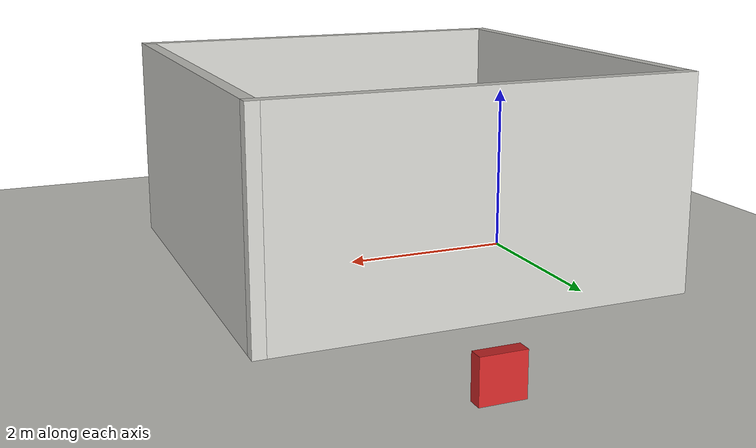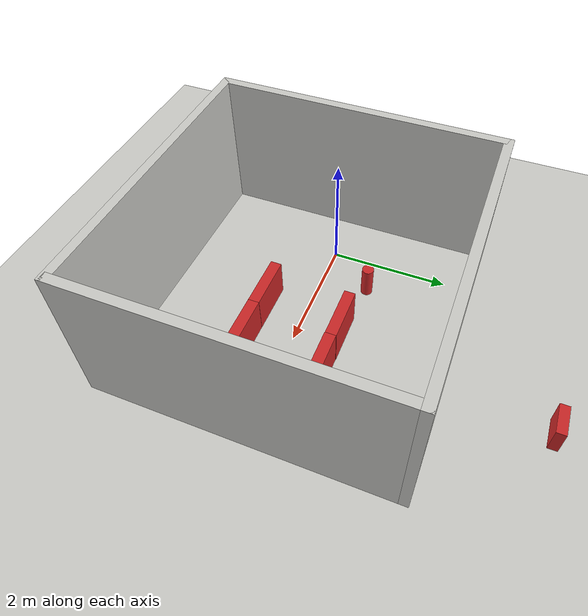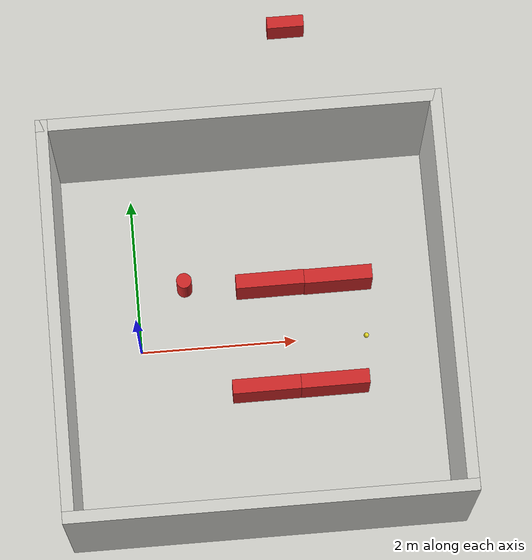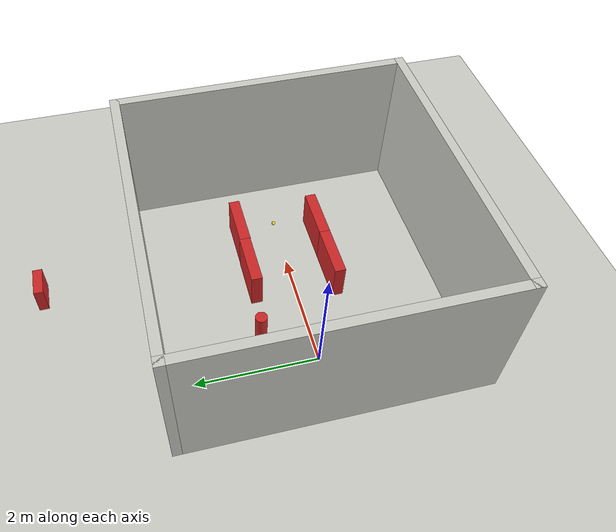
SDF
<sdf version="1.7">
 <world name="default">
  <light name="sun" type="directional">
   <pose>0 0 10 0 -0 0</pose>
   <diffuse>0.8 0.8 0.8 1</diffuse>
   <specular>0.2 0.2 0.2 1</specular>
   <attenuation>
    <range>1000</range>
    <constant>0.9</constant>
    <linear>0.01</linear>
    <quadratic>0.001</quadratic>
   </attenuation>
   <direction>-0.5 0.1 -0.9</direction>
   <spot><inner_angle>0</inner_angle><outer_angle>0</outer_angle><falloff>0</falloff></spot>
  </light>
  <model name="ground_plane">
   <pose>1.45388 -0.007926 0 0 -0 0</pose>
   <static>1</static>
   <link name="link">
    <collision name="collision">
     <geometry><plane><normal>0 0 1</normal><size>5 5</size></plane></geometry>
     <surface>
      <contact><collide_bitmask>65535</collide_bitmask></contact>
      <friction><ode><mu>100</mu><mu2>50</mu2></ode></friction>
     </surface>
    </collision>
    <visual name="visual">
     <cast_shadows>0</cast_shadows>
     <geometry><plane><normal>0 0 1</normal><size>5 5</size></plane></geometry>
     <material>
      <script><uri>file://media/materials/scripts/gazebo.material</uri><name>Gazebo/CeilingTiled</name></script>
      <ambient>1 1 1 1</ambient>
     </material>
    </visual>
   </link>
  </model>
  <gravity>0 0 -9.8</gravity>
  <magnetic_field>6e-06 2.3e-05 -4.2e-05</magnetic_field>
  <atmosphere type="adiabatic"/>
  <physics type="ode">
   <max_step_size>0.001</max_step_size>
   <real_time_factor>1</real_time_factor>
   <real_time_update_rate>1000</real_time_update_rate>
  </physics>
  <scene><ambient>0.4 0.4 0.4 1</ambient><background>0.7 0.7 0.7 1</background><shadows>1</shadows></scene>
  <audio><device>default</device></audio>
  <spherical_coordinates>
   <surface_model>EARTH_WGS84</surface_model>
   <latitude_deg>0</latitude_deg>
   <longitude_deg>0</longitude_deg>
   <elevation>0</elevation>
   <heading_deg>0</heading_deg>
  </spherical_coordinates>
  <model name="room_5">
   <pose>1.45775 -0.00463 0 0 -0 0</pose>
   <link name="Wall_17">
    <collision name="Wall_17_Collision">
     <geometry><box><size>5 0.15 2.5</size></box></geometry>
     <pose>0 0 1.25 0 -0 0</pose>
    </collision>
    <visual name="Wall_17_Visual">
     <pose>0 0 1.25 0 -0 0</pose>
     <geometry><box><size>5 0.15 2.5</size></box></geometry>
     <material>
      <script><uri>file://media/materials/scripts/gazebo.material</uri><name>Gazebo/CeilingTiled</name></script>
      <ambient>0.760784 0.662745 0.627451 1</ambient>
     </material>
     <meta><layer>0</layer></meta>
    </visual>
    <pose>-0 -2.425 0 0 -0 0</pose>
   </link>
   <link name="Wall_18">
    <collision name="Wall_18_Collision">
     <geometry><box><size>5 0.15 2.5</size></box></geometry>
     <pose>0 0 1.25 0 -0 0</pose>
    </collision>
    <visual name="Wall_18_Visual">
     <pose>0 0 1.25 0 -0 0</pose>
     <geometry><box><size>5 0.15 2.5</size></box></geometry>
     <material>
      <script><uri>file://media/materials/scripts/gazebo.material</uri><name>Gazebo/CeilingTiled</name></script>
      <ambient>0.760784 0.662745 0.627451 1</ambient>
     </material>
     <meta><layer>0</layer></meta>
    </visual>
    <pose>2.425 -0 0 0 -0 1.5708</pose>
   </link>
   <link name="Wall_19">
    <collision name="Wall_19_Collision">
     <geometry><box><size>5 0.15 2.5</size></box></geometry>
     <pose>0 0 1.25 0 -0 0</pose>
    </collision>
    <visual name="Wall_19_Visual">
     <pose>0 0 1.25 0 -0 0</pose>
     <geometry><box><size>5 0.15 2.5</size></box></geometry>
     <material>
      <script><uri>file://media/materials/scripts/gazebo.material</uri><name>Gazebo/CeilingTiled</name></script>
      <ambient>0.760784 0.662745 0.627451 1</ambient>
     </material>
     <meta><layer>0</layer></meta>
    </visual>
    <pose>-0 2.425 0 0 -0 3.14159</pose>
   </link>
   <link name="Wall_20">
    <collision name="Wall_20_Collision">
     <geometry><box><size>5 0.15 2.5</size></box></geometry>
     <pose>0 0 1.25 0 -0 0</pose>
    </collision>
    <visual name="Wall_20_Visual">
     <pose>0 0 1.25 0 -0 0</pose>
     <geometry><box><size>5 0.15 2.5</size></box></geometry>
     <material>
      <script><uri>file://media/materials/scripts/gazebo.material</uri><name>Gazebo/CeilingTiled</name></script>
      <ambient>0.760784 0.662745 0.627451 1</ambient>
     </material>
     <meta><layer>0</layer></meta>
    </visual>
    <pose>-2.425 -0 0 0 -0 -1.5708</pose>
   </link>
   <static>1</static>
  </model>
  <model name="obstacle3">
   <link name="link_4">
    <inertial>
     <mass>0.105034</mass>
     <inertia>
      <ixx>0.0104024</ixx>
      <ixy>0</ixy>
      <ixz>0</ixz>
      <iyy>0.00405608</iyy>
      <iyz>0</iyz>
      <izz>0.006939</izz>
     </inertia>
    </inertial>
    <visual name="visual">
     <geometry><box><size>0.184004 0.871159 0.655398</size></box></geometry>
     <material>
      <lighting>1</lighting>
      <script><uri>file://media/materials/scripts/gazebo.material</uri><name>Gazebo/Red</name></script>
      <shader type="pixel"><normal_map>__default__</normal_map></shader>
     </material>
    </visual>
    <collision name="collision">
     <geometry><box><size>0.184004 0.871159 0.655398</size></box></geometry>
     <surface>
      <friction>
       <ode><mu>1</mu><mu2>1</mu2><fdir1>0 0 0</fdir1><slip1>0</slip1><slip2>0</slip2></ode>
       <torsional>
        <coefficient>1</coefficient>
        <patch_radius>0</patch_radius>
        <surface_radius>0</surface_radius>
        <use_patch_radius>1</use_patch_radius>
        <ode><slip>0</slip></ode>
       </torsional>
      </friction>
      <bounce><restitution_coefficient>0</restitution_coefficient><threshold>1e+06</threshold></bounce>
      <contact>
       <collide_without_contact>0</collide_without_contact>
       <collide_without_contact_bitmask>1</collide_without_contact_bitmask>
       <collide_bitmask>1</collide_bitmask>
       <ode>
        <soft_cfm>0</soft_cfm>
        <soft_erp>0.2</soft_erp>
        <kp>1e+13</kp>
        <kd>1</kd>
        <max_vel>0.01</max_vel>
        <min_depth>0</min_depth>
       </ode>
       <bullet>
        <split_impulse>1</split_impulse>
        <split_impulse_penetration_threshold>-0.01</split_impulse_penetration_threshold>
        <soft_cfm>0</soft_cfm>
        <soft_erp>0.2</soft_erp>
        <kp>1e+13</kp>
        <kd>1</kd>
       </bullet>
      </contact>
     </surface>
    </collision>
   </link>
   <static>0</static>
   <pose>2.42958 -0.655141 0.327699 0 -0 -1.56695</pose>
  </model>
  <model name="obstacle1">
   <link name="link_2">
    <inertial>
     <mass>0.0345641</mass>
     <inertia>
      <ixx>0.00069856</ixx>
      <ixy>0</ixy>
      <ixz>0</ixz>
      <iyy>0.00129033</iyy>
      <iyz>0</iyz>
      <izz>0.00072901</izz>
     </inertia>
    </inertial>
    <visual name="visual">
     <geometry><box><size>0.478826 0.154349 0.467656</size></box></geometry>
     <material>
      <lighting>1</lighting>
      <script><uri>file://media/materials/scripts/gazebo.material</uri><name>Gazebo/Red</name></script>
      <shader type="pixel"><normal_map>__default__</normal_map></shader>
      <ambient>1 0 0 1</ambient>
      <diffuse>1 0 0 1</diffuse>
      <specular>0.1 0.1 0.1 1</specular>
      <emissive>0 0 0 1</emissive>
     </material>
    </visual>
    <collision name="collision">
     <geometry><box><size>0.478826 0.154349 0.467656</size></box></geometry>
     <surface>
      <friction>
       <ode><mu>1</mu><mu2>1</mu2><fdir1>0 0 0</fdir1><slip1>0</slip1><slip2>0</slip2></ode>
       <torsional>
        <coefficient>1</coefficient>
        <patch_radius>0</patch_radius>
        <surface_radius>0</surface_radius>
        <use_patch_radius>1</use_patch_radius>
        <ode><slip>0</slip></ode>
       </torsional>
      </friction>
      <bounce><restitution_coefficient>0</restitution_coefficient><threshold>1e+06</threshold></bounce>
      <contact>
       <collide_without_contact>0</collide_without_contact>
       <collide_without_contact_bitmask>1</collide_without_contact_bitmask>
       <collide_bitmask>1</collide_bitmask>
       <ode>
        <soft_cfm>0</soft_cfm>
        <soft_erp>0.2</soft_erp>
        <kp>1e+13</kp>
        <kd>1</kd>
        <max_vel>0.01</max_vel>
        <min_depth>0</min_depth>
       </ode>
       <bullet>
        <split_impulse>1</split_impulse>
        <split_impulse_penetration_threshold>-0.01</split_impulse_penetration_threshold>
        <soft_cfm>0</soft_cfm>
        <soft_erp>0.2</soft_erp>
        <kp>1e+13</kp>
        <kd>1</kd>
       </bullet>
      </contact>
     </surface>
    </collision>
   </link>
   <static>0</static>
   <pose>2.19731 4.1578 0.233829 7e-06 -0 -0.000227</pose>
  </model>
  <model name="obstacle2">
   <link name="link_3">
    <inertial>
     <mass>0.0208468</mass>
     <inertia>
      <ixx>0.00057696</ixx>
      <ixy>0</ixy>
      <ixz>0</ixz>
      <iyy>0.00057696</iyy>
      <iyz>0</iyz>
      <izz>9.866e-05</izz>
     </inertia>
    </inertial>
    <visual name="visual">
     <geometry><cylinder><radius>0.0972917</radius><length>0.551106</length></cylinder></geometry>
     <material>
      <lighting>1</lighting>
      <script><uri>file://media/materials/scripts/gazebo.material</uri><name>Gazebo/Red</name></script>
      <shader type="pixel"><normal_map>__default__</normal_map></shader>
      <ambient>1 0 0 1</ambient>
      <diffuse>1 0 0 1</diffuse>
      <specular>0.1 0.1 0.1 1</specular>
      <emissive>0 0 0 1</emissive>
     </material>
    </visual>
    <collision name="collision">
     <geometry><cylinder><radius>0.097292</radius><length>0.551106</length></cylinder></geometry>
     <surface>
      <friction>
       <ode><mu>1</mu><mu2>1</mu2><fdir1>0 0 0</fdir1><slip1>0</slip1><slip2>0</slip2></ode>
       <torsional>
        <coefficient>1</coefficient>
        <patch_radius>0</patch_radius>
        <surface_radius>0</surface_radius>
        <use_patch_radius>1</use_patch_radius>
        <ode><slip>0</slip></ode>
       </torsional>
      </friction>
      <bounce><restitution_coefficient>0</restitution_coefficient><threshold>1e+06</threshold></bounce>
      <contact>
       <collide_without_contact>0</collide_without_contact>
       <collide_without_contact_bitmask>1</collide_without_contact_bitmask>
       <collide_bitmask>1</collide_bitmask>
       <ode>
        <soft_cfm>0</soft_cfm>
        <soft_erp>0.2</soft_erp>
        <kp>1e+13</kp>
        <kd>1</kd>
        <max_vel>0.01</max_vel>
        <min_depth>0</min_depth>
       </ode>
       <bullet>
        <split_impulse>1</split_impulse>
        <split_impulse_penetration_threshold>-0.01</split_impulse_penetration_threshold>
        <soft_cfm>0</soft_cfm>
        <soft_erp>0.2</soft_erp>
        <kp>1e+13</kp>
        <kd>1</kd>
       </bullet>
      </contact>
     </surface>
    </collision>
   </link>
   <static>0</static>
   <pose>0.614965 0.786798 0.275553 0 0 -3.1e-05</pose>
  </model>
  <model name="tennis_ball">
   <link name="link">
    <inertial>
     <mass>1</mass>
     <inertia><ixx>0.1</ixx><ixy>0</ixy><ixz>0</ixz><iyy>0.1</iyy><iyz>0</iyz><izz>0.1</izz></inertia>
    </inertial>
    <pose>0.84736 0.727723 0 0 -0 0</pose>
    <visual name="visual">
     <geometry><sphere><radius>0.033</radius></sphere></geometry>
     <material>
      <script><name>Gazebo/Yellow</name><uri>file://media/materials/scripts/gazebo.material</uri></script>
      <shader type="pixel"><normal_map>__default__</normal_map></shader>
      <ambient>1 1 0 1</ambient>
      <diffuse>1 1 0 1</diffuse>
      <emissive>0 0 0 1</emissive>
     </material>
    </visual>
    <collision name="collision">
     <geometry><sphere><radius>0.033</radius></sphere></geometry>
     <surface>
      <friction>
       <ode><mu>1</mu><mu2>1</mu2><fdir1>0 0 0</fdir1><slip1>0</slip1><slip2>0</slip2></ode>
       <torsional>
        <coefficient>1</coefficient>
        <patch_radius>0</patch_radius>
        <surface_radius>0</surface_radius>
        <use_patch_radius>1</use_patch_radius>
        <ode><slip>0</slip></ode>
       </torsional>
      </friction>
      <bounce><restitution_coefficient>0</restitution_coefficient><threshold>1e+06</threshold></bounce>
      <contact>
       <collide_without_contact>0</collide_without_contact>
       <collide_without_contact_bitmask>1</collide_without_contact_bitmask>
       <collide_bitmask>1</collide_bitmask>
       <ode>
        <soft_cfm>0</soft_cfm>
        <soft_erp>0.2</soft_erp>
        <kp>1e+13</kp>
        <kd>1</kd>
        <max_vel>0.01</max_vel>
        <min_depth>0</min_depth>
       </ode>
       <bullet>
        <split_impulse>1</split_impulse>
        <split_impulse_penetration_threshold>-0.01</split_impulse_penetration_threshold>
        <soft_cfm>0</soft_cfm>
        <soft_erp>0.2</soft_erp>
        <kp>1e+13</kp>
        <kd>1</kd>
       </bullet>
      </contact>
     </surface>
    </collision>
   </link>
   <static>0</static>
   <pose>2.05398 -0.73314 0.033 0 -0 0</pose>
  </model>
  <model name="obstacle3_clone">
   <link name="link_4">
    <inertial>
     <mass>0.105034</mass>
     <inertia>
      <ixx>0.0104024</ixx>
      <ixy>0</ixy>
      <ixz>0</ixz>
      <iyy>0.00405608</iyy>
      <iyz>0</iyz>
      <izz>0.006939</izz>
     </inertia>
    </inertial>
    <visual name="visual">
     <geometry><box><size>0.184004 0.871159 0.655398</size></box></geometry>
     <material>
      <lighting>1</lighting>
      <script><uri>file://media/materials/scripts/gazebo.material</uri><name>Gazebo/Red</name></script>
      <shader type="pixel"><normal_map>__default__</normal_map></shader>
     </material>
    </visual>
    <collision name="collision">
     <geometry><box><size>0.184004 0.871159 0.655398</size></box></geometry>
     <surface>
      <friction>
       <ode><mu>1</mu><mu2>1</mu2><fdir1>0 0 0</fdir1><slip1>0</slip1><slip2>0</slip2></ode>
       <torsional>
        <coefficient>1</coefficient>
        <patch_radius>0</patch_radius>
        <surface_radius>0</surface_radius>
        <use_patch_radius>1</use_patch_radius>
        <ode><slip>0</slip></ode>
       </torsional>
      </friction>
      <bounce><restitution_coefficient>0</restitution_coefficient><threshold>1e+06</threshold></bounce>
      <contact>
       <collide_without_contact>0</collide_without_contact>
       <collide_without_contact_bitmask>1</collide_without_contact_bitmask>
       <collide_bitmask>1</collide_bitmask>
       <ode>
        <soft_cfm>0</soft_cfm>
        <soft_erp>0.2</soft_erp>
        <kp>1e+13</kp>
        <kd>1</kd>
        <max_vel>0.01</max_vel>
        <min_depth>0</min_depth>
       </ode>
       <bullet>
        <split_impulse>1</split_impulse>
        <split_impulse_penetration_threshold>-0.01</split_impulse_penetration_threshold>
        <soft_cfm>0</soft_cfm>
        <soft_erp>0.2</soft_erp>
        <kp>1e+13</kp>
        <kd>1</kd>
       </bullet>
      </contact>
     </surface>
    </collision>
   </link>
   <static>0</static>
   <pose>2.58001 0.694146 0.327699 0 0 -1.56732</pose>
  </model>
  <model name="obstacle3_clone_clone">
   <link name="link_4">
    <inertial>
     <mass>0.105034</mass>
     <inertia>
      <ixx>0.0104024</ixx>
      <ixy>0</ixy>
      <ixz>0</ixz>
      <iyy>0.00405608</iyy>
      <iyz>0</iyz>
      <izz>0.006939</izz>
     </inertia>
    </inertial>
    <visual name="visual">
     <geometry><box><size>0.184004 0.871159 0.655398</size></box></geometry>
     <material>
      <lighting>1</lighting>
      <script><uri>file://media/materials/scripts/gazebo.material</uri><name>Gazebo/Red</name></script>
      <shader type="pixel"><normal_map>__default__</normal_map></shader>
     </material>
    </visual>
    <collision name="collision">
     <geometry><box><size>0.184004 0.871159 0.655398</size></box></geometry>
     <surface>
      <friction>
       <ode><mu>1</mu><mu2>1</mu2><fdir1>0 0 0</fdir1><slip1>0</slip1><slip2>0</slip2></ode>
       <torsional>
        <coefficient>1</coefficient>
        <patch_radius>0</patch_radius>
        <surface_radius>0</surface_radius>
        <use_patch_radius>1</use_patch_radius>
        <ode><slip>0</slip></ode>
       </torsional>
      </friction>
      <bounce><restitution_coefficient>0</restitution_coefficient><threshold>1e+06</threshold></bounce>
      <contact>
       <collide_without_contact>0</collide_without_contact>
       <collide_without_contact_bitmask>1</collide_without_contact_bitmask>
       <collide_bitmask>1</collide_bitmask>
       <ode>
        <soft_cfm>0</soft_cfm>
        <soft_erp>0.2</soft_erp>
        <kp>1e+13</kp>
        <kd>1</kd>
        <max_vel>0.01</max_vel>
        <min_depth>0</min_depth>
       </ode>
       <bullet>
        <split_impulse>1</split_impulse>
        <split_impulse_penetration_threshold>-0.01</split_impulse_penetration_threshold>
        <soft_cfm>0</soft_cfm>
        <soft_erp>0.2</soft_erp>
        <kp>1e+13</kp>
        <kd>1</kd>
       </bullet>
      </contact>
     </surface>
    </collision>
   </link>
   <static>0</static>
   <pose>1.7088 0.697419 0.327699 -0 -0 -1.56733</pose>
  </model>
  <model name="obstacle3_clone_clone_clone">
   <link name="link_4">
    <inertial>
     <mass>0.105034</mass>
     <inertia>
      <ixx>0.0104024</ixx>
      <ixy>0</ixy>
      <ixz>0</ixz>
      <iyy>0.00405608</iyy>
      <iyz>0</iyz>
      <izz>0.006939</izz>
     </inertia>
    </inertial>
    <visual name="visual">
     <geometry><box><size>0.184004 0.871159 0.655398</size></box></geometry>
     <material>
      <lighting>1</lighting>
      <script><uri>file://media/materials/scripts/gazebo.material</uri><name>Gazebo/Red</name></script>
      <shader type="pixel"><normal_map>__default__</normal_map></shader>
     </material>
    </visual>
    <collision name="collision">
     <geometry><box><size>0.184004 0.871159 0.655398</size></box></geometry>
     <surface>
      <friction>
       <ode><mu>1</mu><mu2>1</mu2><fdir1>0 0 0</fdir1><slip1>0</slip1><slip2>0</slip2></ode>
       <torsional>
        <coefficient>1</coefficient>
        <patch_radius>0</patch_radius>
        <surface_radius>0</surface_radius>
        <use_patch_radius>1</use_patch_radius>
        <ode><slip>0</slip></ode>
       </torsional>
      </friction>
      <bounce><restitution_coefficient>0</restitution_coefficient><threshold>1e+06</threshold></bounce>
      <contact>
       <collide_without_contact>0</collide_without_contact>
       <collide_without_contact_bitmask>1</collide_without_contact_bitmask>
       <collide_bitmask>1</collide_bitmask>
       <ode>
        <soft_cfm>0</soft_cfm>
        <soft_erp>0.2</soft_erp>
        <kp>1e+13</kp>
        <kd>1</kd>
        <max_vel>0.01</max_vel>
        <min_depth>0</min_depth>
       </ode>
       <bullet>
        <split_impulse>1</split_impulse>
        <split_impulse_penetration_threshold>-0.01</split_impulse_penetration_threshold>
        <soft_cfm>0</soft_cfm>
        <soft_erp>0.2</soft_erp>
        <kp>1e+13</kp>
        <kd>1</kd>
       </bullet>
      </contact>
     </surface>
    </collision>
   </link>
   <static>0</static>
   <pose>1.55841 -0.657399 0.327699 0 3e-06 -1.56695</pose>
  </model>
 </world>
</sdf>
